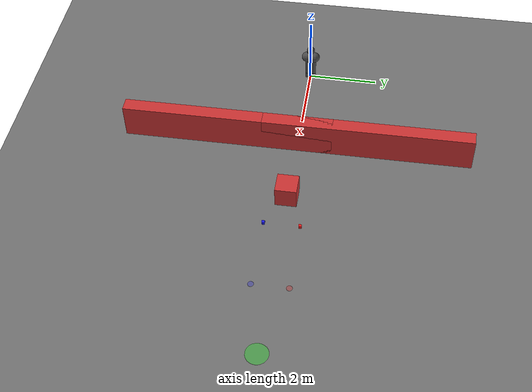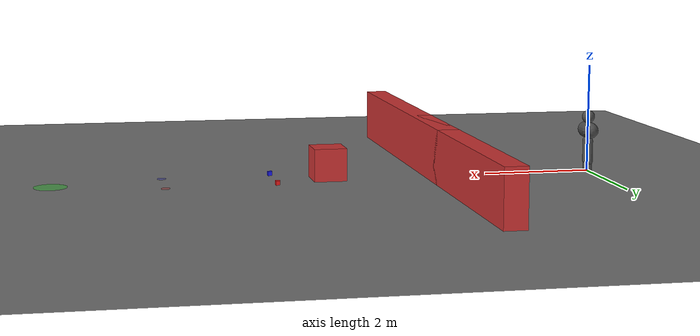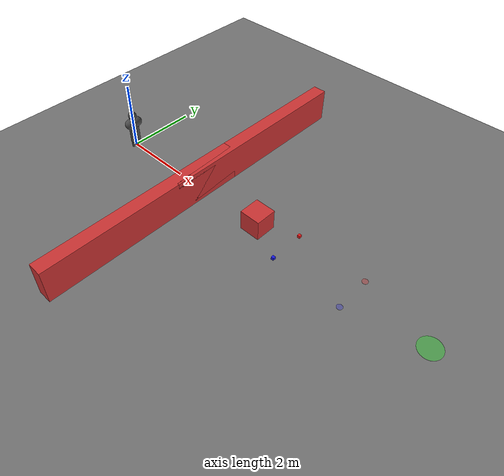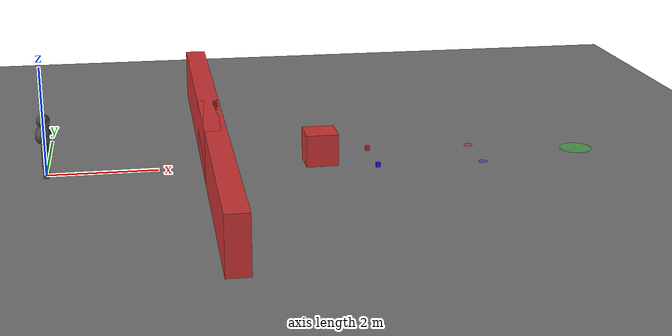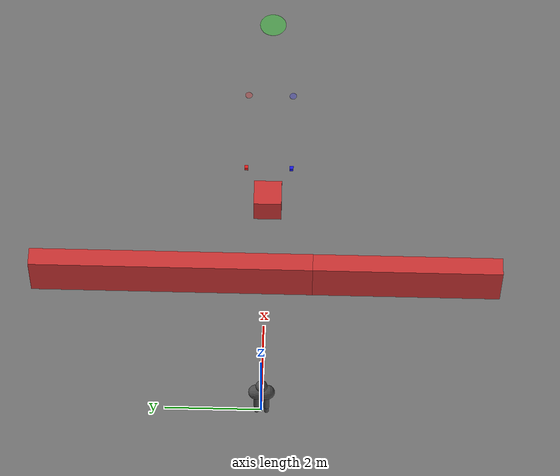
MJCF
<mujoco model="agibot-x2_full_task">
  <compiler angle="radian" autolimits="true"/>
  <option timestep="0.001" gravity="0 0 -9.81"/>
  <default><joint armature="0.01" damping="0.1"/><geom condim="4" friction="1.0 0.005 0.0001"/></default>
  <asset>
    <texture name="grid" type="2d" builtin="checker" rgb1="0.4 0.4 0.4" rgb2="0.5 0.5 0.5" width="512" height="512"/>
    <material name="grid_mat" texture="grid" texrepeat="10 10" reflectance="0.1"/>
    <material name="obstacle_mat" rgba="0.8 0.2 0.2 1"/>
    <material name="goal_mat" rgba="0.2 0.8 0.2 0.5"/>
    <material name="robot_mat" rgba="0.3 0.3 0.3 1"/>
  </asset>
  <worldbody>
    <geom name="ground" type="plane" size="20 20 0.1" material="grid_mat"/>
    <light name="top" pos="0 0 10" dir="0 0 -1"/>
    <body name="torso" pos="0 0 0.78">
      <inertial mass="35.0" pos="0 0 0" diaginertia="1.0 1.0 1.0"/>
      <geom name="torso_geom" type="capsule" size="0.15" fromto="0 -0.12 0 0 0.12 0" material="robot_mat"/>
      <body name="head" pos="0 0 0.25"><inertial mass="2.0" pos="0 0 0" diaginertia="0.1 0.1 0.1"/><geom name="head_geom" type="sphere" size="0.12" material="robot_mat"/></body>
      <body name="left_thigh" pos="0 0.1 -0.2"><inertial mass="5.0" pos="0 0 -0.2" diaginertia="0.1 0.1 0.1"/><joint name="left_hip" type="hinge" axis="1 0 0" range="-1.5 1.5"/><geom name="lt_g" type="capsule" size="0.06" fromto="0 0 0 0 0 -0.4" material="robot_mat"/><body name="left_shin" pos="0 0 -0.4"><inertial mass="4.0" pos="0 0 -0.2" diaginertia="0.08 0.08 0.08"/><joint name="left_knee" type="hinge" axis="0 1 0" range="-2.5 0"/><geom name="ls_g" type="capsule" size="0.05" fromto="0 0 0 0 0 -0.4" material="robot_mat"/><body name="left_foot" pos="0 0 -0.4"><inertial mass="1.0" pos="0 0 -0.03" diaginertia="0.01 0.01 0.01"/><geom name="lf_g" type="box" size="0.08 0.04 0.03" pos="0 0 -0.03" material="robot_mat"/></body></body></body>
      <body name="right_thigh" pos="0 -0.1 -0.2"><inertial mass="5.0" pos="0 0 -0.2" diaginertia="0.1 0.1 0.1"/><joint name="right_hip" type="hinge" axis="1 0 0" range="-1.5 1.5"/><geom name="rt_g" type="capsule" size="0.06" fromto="0 0 0 0 0 -0.4" material="robot_mat"/><body name="right_shin" pos="0 0 -0.4"><inertial mass="4.0" pos="0 0 -0.2" diaginertia="0.08 0.08 0.08"/><joint name="right_knee" type="hinge" axis="0 1 0" range="-2.5 0"/><geom name="rs_g" type="capsule" size="0.05" fromto="0 0 0 0 0 -0.4" material="robot_mat"/><body name="right_foot" pos="0 0 -0.4"><inertial mass="1.0" pos="0 0 -0.03" diaginertia="0.01 0.01 0.01"/><geom name="rf_g" type="box" size="0.08 0.04 0.03" pos="0 0 -0.03" material="robot_mat"/></body></body></body>
      <freejoint name="root"/>
    </body>
    <body name="wall_left" pos="3 2 0.5"><geom name="wall_l" type="box" size="0.2 3 0.5" material="obstacle_mat"/></body>
    <body name="wall_right" pos="3 -2 0.5"><geom name="wall_r" type="box" size="0.2 3 0.5" material="obstacle_mat"/></body>
    <body name="obstacle_box" pos="5 0 0.3"><geom name="obs_box" type="box" size="0.3 0.3 0.3" material="obstacle_mat"/></body>
    <body name="red_cube" pos="6 0.5 0.05"><freejoint name="red_cube_joint"/><geom name="red_cube_geom" type="box" size="0.04 0.04 0.04" rgba="0.9 0.1 0.1 1" mass="0.1"/></body>
    <body name="blue_cube" pos="6 -0.5 0.05"><freejoint name="blue_cube_joint"/><geom name="blue_cube_geom" type="box" size="0.04 0.04 0.04" rgba="0.1 0.1 0.9 1" mass="0.1"/></body>
    <body name="target_a" pos="8 0.5 0.01"><geom name="target_a_geom" type="cylinder" size="0.08 0.005" rgba="0.9 0.1 0.1 0.3" contype="0"/></body>
    <body name="target_b" pos="8 -0.5 0.01"><geom name="target_b_geom" type="cylinder" size="0.08 0.005" rgba="0.1 0.1 0.9 0.3" contype="0"/></body>
    <body name="nav_goal" pos="10 0 0.01"><geom name="nav_goal_geom" type="cylinder" size="0.3 0.005" material="goal_mat"/></body>
  </worldbody>
</mujoco>
